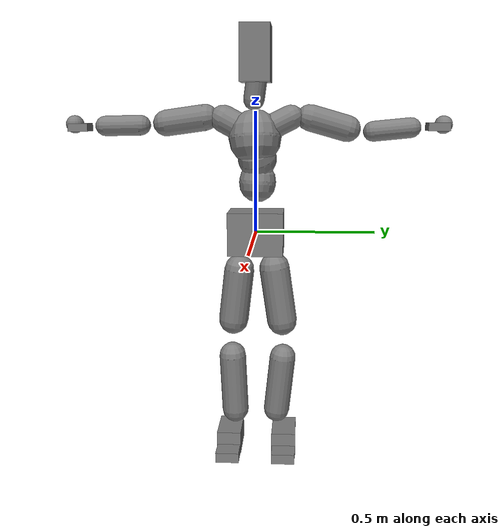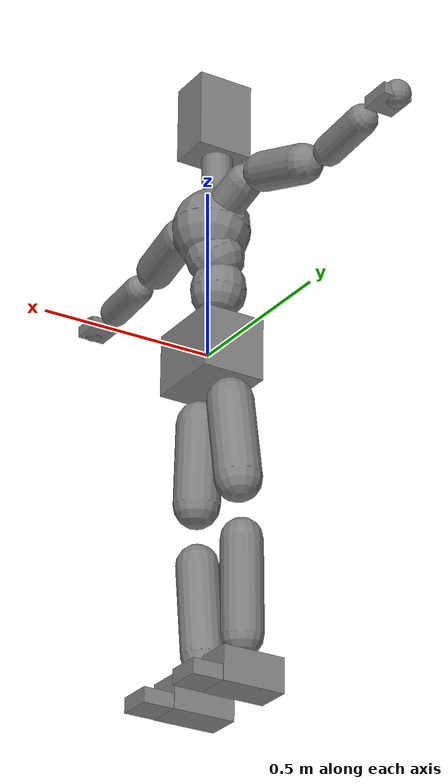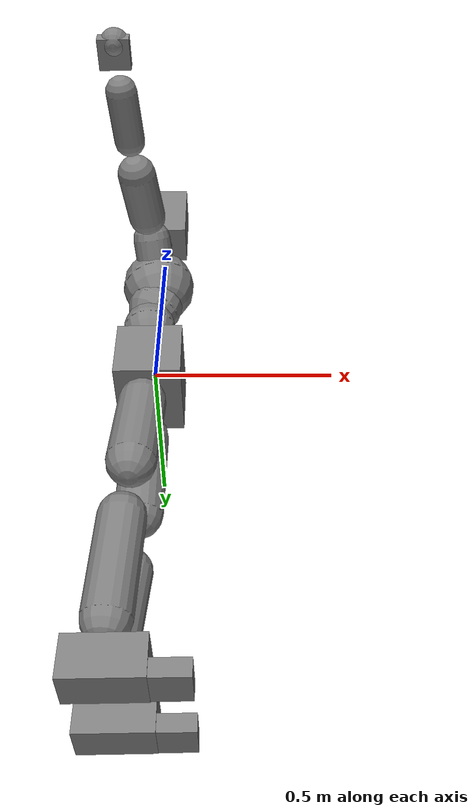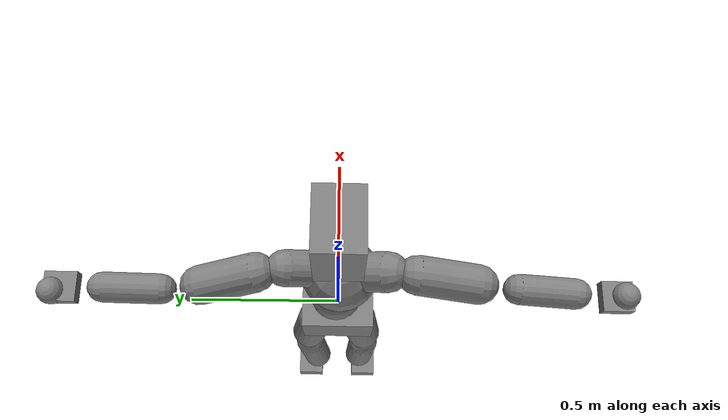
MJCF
<mujoco model="smpl">
  <compiler angle="radian" />
  <default>
    <motor ctrlrange="-1 1" ctrllimited="true" />
    <geom condim="1" friction="1.0 0.05 0.05" solimp=".9 .99 .003" solref=".015 1" />
    <joint limited="true" solimplimit="0 .99 .01" />
    <site size=".04" group="3" />
    <default class="force-torque">
      <site type="box" size=".01 .01 .02" rgba="1 0 0 1" />
    </default>
    <default class="touch">
      <site type="capsule" rgba="0 0 1 .3" />
    </default>
  </default>
  <worldbody>
    <body name="Pelvis" pos="0 0 0">
      <freejoint name="Pelvis" />
      <body name="L_Hip" pos="-0.0068 0.0695 -0.0914">
        <joint name="L_Hip_x" type="hinge" pos="0 0 0" axis="1 0 0" actuatorfrcrange="-300 300" stiffness="500" damping="50" armature="0.02" range="-0.5236 1.5708" />
        <joint name="L_Hip_y" type="hinge" pos="0 0 0" axis="0 1 0" actuatorfrcrange="-300 300" stiffness="500" damping="50" armature="0.02" range="-2.4435 1.0472" />
        <joint name="L_Hip_z" type="hinge" pos="0 0 0" axis="0 0 1" actuatorfrcrange="-300 300" stiffness="500" damping="50" armature="0.02" range="-0.6109 1.0472" />
        <body name="L_Knee" pos="-0.0045 0.0343 -0.3752">
          <joint name="L_Knee_x" type="hinge" pos="0 0 0" axis="1 0 0" actuatorfrcrange="-200 200" stiffness="500" damping="50" armature="0.02" range="-0.5236 0.5236" />
          <joint name="L_Knee_y" type="hinge" pos="0 0 0" axis="0 1 0" actuatorfrcrange="-200 200" stiffness="500" damping="50" armature="0.02" range="0 2.7925" />
          <joint name="L_Knee_z" type="hinge" pos="0 0 0" axis="0 0 1" actuatorfrcrange="-200 200" stiffness="500" damping="50" armature="0.02" range="-0.5236 0.5236" />
          <body name="L_Ankle" pos="-0.0437 -0.0136 -0.398">
            <joint name="L_Ankle_x" type="hinge" pos="0 0 0" axis="1 0 0" actuatorfrcrange="-100 100" stiffness="400" damping="40" armature="0.02" range="-0.5236 0.5236" />
            <joint name="L_Ankle_y" type="hinge" pos="0 0 0" axis="0 1 0" actuatorfrcrange="-100 100" stiffness="400" damping="40" armature="0.02" range="-0.9599 0.9599" />
            <joint name="L_Ankle_z" type="hinge" pos="0 0 0" axis="0 0 1" actuatorfrcrange="-100 100" stiffness="400" damping="40" armature="0.02" range="-0.6981 0.6981" />
            <body name="L_Toe" pos="0.1193 0.0124 -0.0258">
              <joint name="L_Toe_x" type="hinge" pos="0 0 0" axis="1 0 0" actuatorfrcrange="-75 75" stiffness="200" damping="20" armature="0.02" range="-0.5236 0.5236" />
              <joint name="L_Toe_y" type="hinge" pos="0 0 0" axis="0 1 0" actuatorfrcrange="-75 75" stiffness="200" damping="20" armature="0.02" range="-1.0472 1.0472" />
              <joint name="L_Toe_z" type="hinge" pos="0 0 0" axis="0 0 1" actuatorfrcrange="-75 75" stiffness="200" damping="20" armature="0.02" range="-0.5236 0.5236" />
              <geom type="box" pos="0.033631 0.021890 -0.082115" quat="0.999966 0.001714 -0.007315 -0.003541" size="0.051918 0.050082 0.021318" density="365.324629" />
            </body>
            <geom type="box" pos="0.025863 0.035098 -0.082434" quat="0.999966 0.001714 -0.007315 -0.003541" size="0.09027 0.052428 0.048756" density="390.038707" />
          </body>
          <geom type="capsule" contype="1" conaffinity="1" fromto="-0.019172 0.014055 -0.103900 -0.036859 -0.012240 -0.357176" size="0.056916" density="1081.207238" />
        </body>
        <geom type="capsule" contype="1" conaffinity="1" fromto="-0.014313 0.009840 -0.070233 -0.016796 0.044485 -0.307679" size="0.06477" density="1254.622818" />
      </body>
      <body name="R_Hip" pos="-0.0043 -0.0677 -0.0905">
        <joint name="R_Hip_x" type="hinge" pos="0 0 0" axis="1 0 0" actuatorfrcrange="-300 300" stiffness="500" damping="50" armature="0.02" range="-1.5708 0.5236" />
        <joint name="R_Hip_y" type="hinge" pos="0 0 0" axis="0 1 0" actuatorfrcrange="-300 300" stiffness="500" damping="50" armature="0.02" range="-2.4435 1.0472" />
        <joint name="R_Hip_z" type="hinge" pos="0 0 0" axis="0 0 1" actuatorfrcrange="-300 300" stiffness="500" damping="50" armature="0.02" range="-1.0472 0.6109" />
        <body name="R_Knee" pos="-0.0089 -0.0383 -0.3826">
          <joint name="R_Knee_x" type="hinge" pos="0 0 0" axis="1 0 0" actuatorfrcrange="-200 200" stiffness="500" damping="50" armature="0.02" range="-0.5236 0.5236" />
          <joint name="R_Knee_y" type="hinge" pos="0 0 0" axis="0 1 0" actuatorfrcrange="-200 200" stiffness="500" damping="50" armature="0.02" range="0 2.7925" />
          <joint name="R_Knee_z" type="hinge" pos="0 0 0" axis="0 0 1" actuatorfrcrange="-200 200" stiffness="500" damping="50" armature="0.02" range="-0.5236 0.5236" />
          <body name="R_Ankle" pos="-0.0423 0.0158 -0.3984">
            <joint name="R_Ankle_x" type="hinge" pos="0 0 0" axis="1 0 0" actuatorfrcrange="-100 100" stiffness="400" damping="40" armature="0.02" range="-0.5236 0.5236" />
            <joint name="R_Ankle_y" type="hinge" pos="0 0 0" axis="0 1 0" actuatorfrcrange="-100 100" stiffness="400" damping="40" armature="0.02" range="-0.9599 0.9599" />
            <joint name="R_Ankle_z" type="hinge" pos="0 0 0" axis="0 0 1" actuatorfrcrange="-100 100" stiffness="400" damping="40" armature="0.02" range="-0.6981 0.6981" />
            <body name="R_Toe" pos="0.1193 -0.0124 -0.0258">
              <joint name="R_Toe_x" type="hinge" pos="0 0 0" axis="1 0 0" actuatorfrcrange="-75 75" stiffness="200" damping="20" armature="0.02" range="-0.5236 0.5236" />
              <joint name="R_Toe_y" type="hinge" pos="0 0 0" axis="0 1 0" actuatorfrcrange="-75 75" stiffness="200" damping="20" armature="0.02" range="-1.0472 1.0472" />
              <joint name="R_Toe_z" type="hinge" pos="0 0 0" axis="0 0 1" actuatorfrcrange="-75 75" stiffness="200" damping="20" armature="0.02" range="-0.5236 0.5236" />
              <geom type="box" pos="0.032325 -0.014132 -0.075954" quat="0.999966 0.001714 -0.007315 -0.003541" size="0.051918 0.050082 0.021318" density="365.324629" />
            </body>
            <geom type="box" pos="0.024559 -0.025724 -0.076375" quat="0.999966 0.001714 -0.007315 -0.003541" size="0.09027 0.052428 0.048756" density="390.038707" />
          </body>
          <geom type="capsule" contype="1" conaffinity="1" fromto="-0.019459 0.001348 -0.094275 -0.029416 0.011916 -0.352114" size="0.058752" density="998.944084" />
        </body>
        <geom type="capsule" contype="1" conaffinity="1" fromto="-0.014360 -0.004423 -0.080039 -0.022124 -0.030777 -0.307467" size="0.064056" density="1353.339817" />
      </body>
      <body name="Torso" pos="-0.0267 -0.0025 0.109">
        <joint name="Torso_x" type="hinge" pos="0 0 0" axis="1 0 0" actuatorfrcrange="-300 300" stiffness="1000" damping="100" armature="0.02" range="-1.0472 1.0472" />
        <joint name="Torso_y" type="hinge" pos="0 0 0" axis="0 1 0" actuatorfrcrange="-300 300" stiffness="1000" damping="100" armature="0.02" range="-1.0472 1.5708" />
        <joint name="Torso_z" type="hinge" pos="0 0 0" axis="0 0 1" actuatorfrcrange="-300 300" stiffness="1000" damping="100" armature="0.02" range="-0.8727 0.8727" />
        <body name="Spine" pos="0.0011 0.0055 0.1352">
          <joint name="Spine_x" type="hinge" pos="0 0 0" axis="1 0 0" actuatorfrcrange="-200 200" stiffness="1000" damping="100" armature="0.02" range="-1.0472 1.0472" />
          <joint name="Spine_y" type="hinge" pos="0 0 0" axis="0 1 0" actuatorfrcrange="-200 200" stiffness="1000" damping="100" armature="0.02" range="-1.0472 1.5708" />
          <joint name="Spine_z" type="hinge" pos="0 0 0" axis="0 0 1" actuatorfrcrange="-200 200" stiffness="1000" damping="100" armature="0.02" range="-0.8727 0.8727" />
          <body name="Chest" pos="0.0254 0.0015 0.0529">
            <joint name="Chest_x" type="hinge" pos="0 0 0" axis="1 0 0" actuatorfrcrange="-150 150" stiffness="1000" damping="100" armature="0.02" range="-1.0472 1.0472" />
            <joint name="Chest_y" type="hinge" pos="0 0 0" axis="0 1 0" actuatorfrcrange="-150 150" stiffness="1000" damping="100" armature="0.02" range="-1.0472 1.5708" />
            <joint name="Chest_z" type="hinge" pos="0 0 0" axis="0 0 1" actuatorfrcrange="-150 150" stiffness="1000" damping="100" armature="0.02" range="-0.8727 0.8727" />
            <body name="Neck" pos="-0.0429 -0.0028 0.2139">
              <joint name="Neck_x" type="hinge" pos="0 0 0" axis="1 0 0" actuatorfrcrange="-75 75" stiffness="500" damping="50" armature="0.02" range="-0.8727 0.8727" />
              <joint name="Neck_y" type="hinge" pos="0 0 0" axis="0 1 0" actuatorfrcrange="-75 75" stiffness="500" damping="50" armature="0.02" range="-0.6981 1.0472" />
              <joint name="Neck_z" type="hinge" pos="0 0 0" axis="0 0 1" actuatorfrcrange="-75 75" stiffness="500" damping="50" armature="0.02" range="-0.7854 0.7854" />
              <body name="Head" pos="0.0513 0.0052 0.065">
                <joint name="Head_x" type="hinge" pos="0 0 0" axis="1 0 0" actuatorfrcrange="-25 25" stiffness="200" damping="20" armature="0.02" range="-0.8727 0.8727" />
                <joint name="Head_y" type="hinge" pos="0 0 0" axis="0 1 0" actuatorfrcrange="-25 25" stiffness="200" damping="20" armature="0.02" range="-0.6981 1.0472" />
                <joint name="Head_z" type="hinge" pos="0 0 0" axis="0 0 1" actuatorfrcrange="-25 25" stiffness="200" damping="20" armature="0.02" range="-0.7854 0.7854" />
                <geom type="box" pos="-0.029205 -0.008067 0.155054" quat="0.999966 0.001714 -0.007315 -0.003541" size="0.081396 0.062628 0.114138" density="771.556215" />
              </body>
              <geom type="capsule" contype="1" conaffinity="1" fromto="0.005960 -0.011295 0.036506 0.017967 0.003464 0.139044" size="0.044064" density="383.807651" />
            </body>
            <body name="L_Thorax" pos="-0.0341 0.0788 0.1217">
              <joint name="L_Thorax_x" type="hinge" pos="0 0 0" axis="1 0 0" actuatorfrcrange="-200 200" stiffness="500" damping="50" armature="0.02" range="-0.6981 0.5236" />
              <joint name="L_Thorax_y" type="hinge" pos="0 0 0" axis="0 1 0" actuatorfrcrange="-200 200" stiffness="500" damping="50" armature="0.02" range="-0.5236 0.5236" />
              <joint name="L_Thorax_z" type="hinge" pos="0 0 0" axis="0 0 1" actuatorfrcrange="-200 200" stiffness="500" damping="50" armature="0.02" range="-0.5236 0.5236" />
              <body name="L_Shoulder" pos="-0.0089 0.091 0.0305">
                <joint name="L_Shoulder_x" type="hinge" pos="0 0 0" axis="1 0 0" actuatorfrcrange="-150 150" stiffness="400" damping="40" armature="0.02" range="-2.3562 1.5708" />
                <joint name="L_Shoulder_y" type="hinge" pos="0 0 0" axis="0 1 0" actuatorfrcrange="-150 150" stiffness="400" damping="40" armature="0.02" range="-1.5708 1.5708" />
                <joint name="L_Shoulder_z" type="hinge" pos="0 0 0" axis="0 0 1" actuatorfrcrange="-150 150" stiffness="400" damping="40" armature="0.02" range="-2.7925 1.0472" />
                <body name="L_Elbow" pos="-0.0275 0.2596 -0.0128">
                  <joint name="L_Elbow_x" type="hinge" pos="0 0 0" axis="1 0 0" actuatorfrcrange="-100 100" stiffness="300" damping="30" armature="0.02" range="-0.5236 0.5236" />
                  <joint name="L_Elbow_y" type="hinge" pos="0 0 0" axis="0 1 0" actuatorfrcrange="-100 100" stiffness="300" damping="30" armature="0.02" range="-0.5236 0.5236" />
                  <joint name="L_Elbow_z" type="hinge" pos="0 0 0" axis="0 0 1" actuatorfrcrange="-100 100" stiffness="300" damping="30" armature="0.02" range="-2.7925 0" />
                  <body name="L_Wrist" pos="-0.0012 0.2492 0.009">
                    <joint name="L_Wrist_x" type="hinge" pos="0 0 0" axis="1 0 0" actuatorfrcrange="-75 75" stiffness="200" damping="20" armature="0.02" range="-1.5708 1.5708" />
                    <joint name="L_Wrist_y" type="hinge" pos="0 0 0" axis="0 1 0" actuatorfrcrange="-75 75" stiffness="200" damping="20" armature="0.02" range="-1.5708 1.5708" />
                    <joint name="L_Wrist_z" type="hinge" pos="0 0 0" axis="0 0 1" actuatorfrcrange="-75 75" stiffness="200" damping="20" armature="0.02" range="-1.0472 1.0472" />
                    <body name="L_Hand" pos="-0.0149 0.084 -0.0082">
                      <joint name="L_Hand_x" type="hinge" pos="0 0 0" axis="1 0 0" actuatorfrcrange="-50 50" stiffness="100" damping="10" armature="0.02" range="-1.5708 1.5708" />
                      <joint name="L_Hand_y" type="hinge" pos="0 0 0" axis="0 1 0" actuatorfrcrange="-50 50" stiffness="100" damping="10" armature="0.02" range="-1.5708 1.5708" />
                      <joint name="L_Hand_z" type="hinge" pos="0 0 0" axis="0 0 1" actuatorfrcrange="-50 50" stiffness="100" damping="10" armature="0.02" range="-1.5708 1.5708" />
                      <geom type="sphere" contype="1" conaffinity="1" pos="-0.001129 0.015319 0.007530" size="0.037811" density="708.003186" />
                    </body>
                    <geom type="box" pos="-0.004603 0.074520 -0.008326" quat="0.999966 0.001714 -0.007315 -0.003541" size="0.04182 0.045288 0.016728" density="1176.116333" />
                  </body>
                  <geom type="capsule" contype="1" conaffinity="1" fromto="-0.002105 0.055885 -0.019044 -0.002624 0.211440 -0.003725" size="0.042636" density="889.685455" />
                </body>
                <geom type="capsule" contype="1" conaffinity="1" fromto="0.004781 0.049527 0.024574 -0.020251 0.206166 -0.020469" size="0.055692" density="627.593693" />
              </body>
              <geom type="capsule" contype="1" conaffinity="1" fromto="0.017942 -0.011959 0.020164 0.007928 0.061386 0.056669" size="0.051918" density="542.288299" />
            </body>
            <body name="R_Thorax" pos="-0.0386 -0.0818 0.1188">
              <joint name="R_Thorax_x" type="hinge" pos="0 0 0" axis="1 0 0" actuatorfrcrange="-200 200" stiffness="500" damping="50" armature="0.02" range="-0.5236 0.6981" />
              <joint name="R_Thorax_y" type="hinge" pos="0 0 0" axis="0 1 0" actuatorfrcrange="-200 200" stiffness="500" damping="50" armature="0.02" range="-0.5236 0.5236" />
              <joint name="R_Thorax_z" type="hinge" pos="0 0 0" axis="0 0 1" actuatorfrcrange="-200 200" stiffness="500" damping="50" armature="0.02" range="-0.5236 0.5236" />
              <body name="R_Shoulder" pos="-0.0091 -0.096 0.0326">
                <joint name="R_Shoulder_x" type="hinge" pos="0 0 0" axis="1 0 0" actuatorfrcrange="-150 150" stiffness="400" damping="40" armature="0.02" range="-1.5708 2.3562" />
                <joint name="R_Shoulder_y" type="hinge" pos="0 0 0" axis="0 1 0" actuatorfrcrange="-150 150" stiffness="400" damping="40" armature="0.02" range="-1.5708 1.5708" />
                <joint name="R_Shoulder_z" type="hinge" pos="0 0 0" axis="0 0 1" actuatorfrcrange="-150 150" stiffness="400" damping="40" armature="0.02" range="-1.0472 2.7925" />
                <body name="R_Elbow" pos="-0.0214 -0.2537 -0.0133">
                  <joint name="R_Elbow_x" type="hinge" pos="0 0 0" axis="1 0 0" actuatorfrcrange="-100 100" stiffness="300" damping="30" armature="0.02" range="-0.5236 0.5236" />
                  <joint name="R_Elbow_y" type="hinge" pos="0 0 0" axis="0 1 0" actuatorfrcrange="-100 100" stiffness="300" damping="30" armature="0.02" range="-0.5236 0.5236" />
                  <joint name="R_Elbow_z" type="hinge" pos="0 0 0" axis="0 0 1" actuatorfrcrange="-100 100" stiffness="300" damping="30" armature="0.02" range="0 2.7925" />
                  <body name="R_Wrist" pos="-0.0056 -0.2553 0.0078">
                    <joint name="R_Wrist_x" type="hinge" pos="0 0 0" axis="1 0 0" actuatorfrcrange="-75 75" stiffness="200" damping="20" armature="0.02" range="-1.5708 1.5708" />
                    <joint name="R_Wrist_y" type="hinge" pos="0 0 0" axis="0 1 0" actuatorfrcrange="-75 75" stiffness="200" damping="20" armature="0.02" range="-1.5708 1.5708" />
                    <joint name="R_Wrist_z" type="hinge" pos="0 0 0" axis="0 0 1" actuatorfrcrange="-75 75" stiffness="200" damping="20" armature="0.02" range="-1.0472 1.0472" />
                    <body name="R_Hand" pos="-0.0103 -0.0846 -0.0061">
                      <joint name="R_Hand_x" type="hinge" pos="0 0 0" axis="1 0 0" actuatorfrcrange="-50 50" stiffness="100" damping="10" armature="0.02" range="-1.5708 1.5708" />
                      <joint name="R_Hand_y" type="hinge" pos="0 0 0" axis="0 1 0" actuatorfrcrange="-50 50" stiffness="100" damping="10" armature="0.02" range="-1.5708 1.5708" />
                      <joint name="R_Hand_z" type="hinge" pos="0 0 0" axis="0 0 1" actuatorfrcrange="-50 50" stiffness="100" damping="10" armature="0.02" range="-1.5708 1.5708" />
                      <geom type="sphere" contype="1" conaffinity="1" pos="-0.001097 -0.015361 0.007522" size="0.038148" density="707.980717" />
                    </body>
                    <geom type="box" pos="-0.012212 -0.078303 -0.011210" quat="0.999966 0.001714 -0.007315 -0.003541" size="0.04182 0.042432 0.016728" density="1332.531157" />
                  </body>
                  <geom type="capsule" contype="1" conaffinity="1" fromto="-0.000080 -0.066711 0.006236 -0.010423 -0.220531 0.002665" size="0.042942" density="900.213690" />
                </body>
                <geom type="capsule" contype="1" conaffinity="1" fromto="0.005877 -0.041349 0.026138 -0.011568 -0.208050 0.002717" size="0.05559" density="607.779141" />
              </body>
              <geom type="capsule" contype="1" conaffinity="1" fromto="0.015420 0.004561 0.020960 0.006083 -0.058591 0.054314" size="0.057018" density="460.884828" />
            </body>
            <geom type="capsule" contype="1" conaffinity="1" fromto="-0.012887 -0.008056 0.091057 -0.014963 -0.008582 0.102826" size="0.109548" density="1871.580892" />
          </body>
          <geom type="capsule" contype="1" conaffinity="1" fromto="0.004597 0.002834 0.059361 0.007608 0.001594 0.064902" size="0.081498" density="1471.693038" />
        </body>
        <geom type="capsule" contype="1" conaffinity="1" fromto="-0.003048 0.008149 0.089821 -0.003946 0.009106 0.103812" size="0.077418" density="1301.272584" />
      </body>
      <geom type="box" pos="-0.011253 0.001324 -0.004604" quat="0.999966 0.001714 -0.007315 -0.003541" size="0.091188 0.116076 0.090678" density="795.378943" />
    </body>
  </worldbody>
  <actuator>
    <motor name="L_Hip_x" joint="L_Hip_x" gear="300" />
    <motor name="L_Hip_y" joint="L_Hip_y" gear="300" />
    <motor name="L_Hip_z" joint="L_Hip_z" gear="300" />
    <motor name="L_Knee_x" joint="L_Knee_x" gear="200" />
    <motor name="L_Knee_y" joint="L_Knee_y" gear="200" />
    <motor name="L_Knee_z" joint="L_Knee_z" gear="200" />
    <motor name="L_Ankle_x" joint="L_Ankle_x" gear="100" />
    <motor name="L_Ankle_y" joint="L_Ankle_y" gear="100" />
    <motor name="L_Ankle_z" joint="L_Ankle_z" gear="100" />
    <motor name="L_Toe_x" joint="L_Toe_x" gear="75" />
    <motor name="L_Toe_y" joint="L_Toe_y" gear="75" />
    <motor name="L_Toe_z" joint="L_Toe_z" gear="75" />
    <motor name="R_Hip_x" joint="R_Hip_x" gear="300" />
    <motor name="R_Hip_y" joint="R_Hip_y" gear="300" />
    <motor name="R_Hip_z" joint="R_Hip_z" gear="300" />
    <motor name="R_Knee_x" joint="R_Knee_x" gear="200" />
    <motor name="R_Knee_y" joint="R_Knee_y" gear="200" />
    <motor name="R_Knee_z" joint="R_Knee_z" gear="200" />
    <motor name="R_Ankle_x" joint="R_Ankle_x" gear="100" />
    <motor name="R_Ankle_y" joint="R_Ankle_y" gear="100" />
    <motor name="R_Ankle_z" joint="R_Ankle_z" gear="100" />
    <motor name="R_Toe_x" joint="R_Toe_x" gear="75" />
    <motor name="R_Toe_y" joint="R_Toe_y" gear="75" />
    <motor name="R_Toe_z" joint="R_Toe_z" gear="75" />
    <motor name="Torso_x" joint="Torso_x" gear="300" />
    <motor name="Torso_y" joint="Torso_y" gear="300" />
    <motor name="Torso_z" joint="Torso_z" gear="300" />
    <motor name="Spine_x" joint="Spine_x" gear="200" />
    <motor name="Spine_y" joint="Spine_y" gear="200" />
    <motor name="Spine_z" joint="Spine_z" gear="200" />
    <motor name="Chest_x" joint="Chest_x" gear="150" />
    <motor name="Chest_y" joint="Chest_y" gear="150" />
    <motor name="Chest_z" joint="Chest_z" gear="150" />
    <motor name="Neck_x" joint="Neck_x" gear="75" />
    <motor name="Neck_y" joint="Neck_y" gear="75" />
    <motor name="Neck_z" joint="Neck_z" gear="75" />
    <motor name="Head_x" joint="Head_x" gear="25" />
    <motor name="Head_y" joint="Head_y" gear="25" />
    <motor name="Head_z" joint="Head_z" gear="25" />
    <motor name="L_Thorax_x" joint="L_Thorax_x" gear="200" />
    <motor name="L_Thorax_y" joint="L_Thorax_y" gear="200" />
    <motor name="L_Thorax_z" joint="L_Thorax_z" gear="200" />
    <motor name="L_Shoulder_x" joint="L_Shoulder_x" gear="150" />
    <motor name="L_Shoulder_y" joint="L_Shoulder_y" gear="150" />
    <motor name="L_Shoulder_z" joint="L_Shoulder_z" gear="150" />
    <motor name="L_Elbow_x" joint="L_Elbow_x" gear="100" />
    <motor name="L_Elbow_y" joint="L_Elbow_y" gear="100" />
    <motor name="L_Elbow_z" joint="L_Elbow_z" gear="100" />
    <motor name="L_Wrist_x" joint="L_Wrist_x" gear="75" />
    <motor name="L_Wrist_y" joint="L_Wrist_y" gear="75" />
    <motor name="L_Wrist_z" joint="L_Wrist_z" gear="75" />
    <motor name="L_Hand_x" joint="L_Hand_x" gear="50" />
    <motor name="L_Hand_y" joint="L_Hand_y" gear="50" />
    <motor name="L_Hand_z" joint="L_Hand_z" gear="50" />
    <motor name="R_Thorax_x" joint="R_Thorax_x" gear="200" />
    <motor name="R_Thorax_y" joint="R_Thorax_y" gear="200" />
    <motor name="R_Thorax_z" joint="R_Thorax_z" gear="200" />
    <motor name="R_Shoulder_x" joint="R_Shoulder_x" gear="150" />
    <motor name="R_Shoulder_y" joint="R_Shoulder_y" gear="150" />
    <motor name="R_Shoulder_z" joint="R_Shoulder_z" gear="150" />
    <motor name="R_Elbow_x" joint="R_Elbow_x" gear="100" />
    <motor name="R_Elbow_y" joint="R_Elbow_y" gear="100" />
    <motor name="R_Elbow_z" joint="R_Elbow_z" gear="100" />
    <motor name="R_Wrist_x" joint="R_Wrist_x" gear="75" />
    <motor name="R_Wrist_y" joint="R_Wrist_y" gear="75" />
    <motor name="R_Wrist_z" joint="R_Wrist_z" gear="75" />
    <motor name="R_Hand_x" joint="R_Hand_x" gear="50" />
    <motor name="R_Hand_y" joint="R_Hand_y" gear="50" />
    <motor name="R_Hand_z" joint="R_Hand_z" gear="50" />
  </actuator>
</mujoco>
